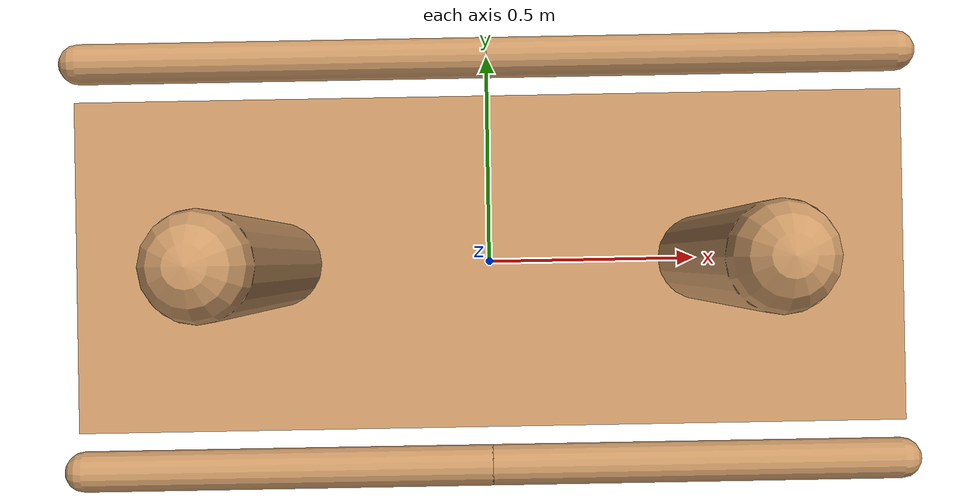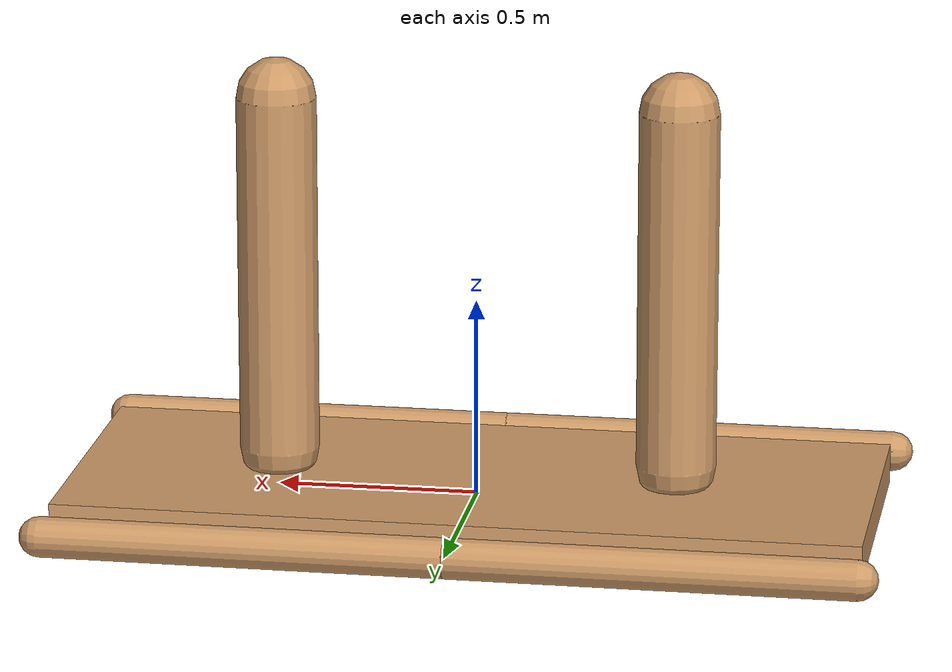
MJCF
<mujoco>
  <compiler angle="degree" coordinate="global" inertiafromgeom="true"/>
  <default>
    <joint armature="0.01" damping=".1" limited="true"/>
    <geom conaffinity="0" condim="3" contype="1" density="1000" friction="0.1 .1 .1" rgba="0.8 0.6 .4 1"/>
  </default>
  <option integrator="RK4" timestep="0.002"/>
  <worldbody>
    <body name="board_main">
      <!-- box shaoe-->
      <joint armature="0" axis="1 0 0" damping="0" limited="false" name="ignorex" pos="0 0 0" stiffness="0" type="slide"/>
      <joint armature="0" axis="0 0 1" damping="0" limited="false" name="ignorez" pos="0 0 0" ref="1.25" stiffness="0" type="slide"/>
      <joint armature="0" axis="0 1 0" damping="0" limited="false" name="ignorey" pos="0 0 0" stiffness="0" type="slide"/>
      <joint armature="0" axis="0 1 0" damping="0" limited="false" name="ignore_y" pos="0 0 0" stiffness="0" type="hinge"/>
      <joint armature="0" axis="0 0 1" damping="0" limited="false" name="ignore_z" pos="0 0 0" stiffness="0" type="hinge"/>
      <geom name="board_main_geom" pos="0 0 0" size="1.0 0.4 0.05" type="box" rgba="0.8 0.6 .4 1"/>

      <body name="front_left">
        <geom name="front_left_geom" fromto="0 0.5 0 1 0.5 0" size="0.05" type="capsule" rgba="0.8 0.6 .4 1"/>
      </body>
      <body name="front_right">
        <geom name="front_right_geom" fromto="0 -0.5 0 1 -0.5 0" size="0.05" type="capsule" rgba="0.8 0.6 .4 1"/>
      </body>
      <body name="back_left">
        <geom name="back_left_geom" fromto="0 0.5 0 -1 0.5 0" size="0.05" type="capsule" rgba="0.8 0.6 .4 1"/>
      </body>

      <body name="back_right">
        <geom name="back_right_geom" fromto="0 -0.5 0 -1 -0.5 0" size="0.05" type="capsule" rgba="0.8 0.6 .4 1"/>
      </body>
      <!-- add capsules on top-->
      <body name="front_capsule">
        <joint name="front_capsule" type="hinge" axis="1 0 0" range="-45 45"/>
        <geom name="front_geom_capsule" fromto="0.5 0 0.1 0.5 0 1" size="0.1" type="capsule" rgba="0.8 0.6 .4 1"/>
      </body>
      <body name="back_capsule">
        <joint name="back_capsule" type="hinge" pos="0 0 0" axis="1 0 0" range="-45 45"/>
        <geom name="back_geom_capsule" fromto="-0.5 0 0.1 -0.5 0 1" size="0.1" type="capsule" rgba="0.8 0.6 .4 1"/>
      </body>
    </body>
  </worldbody>
  <actuator>
    <motor joint="front_capsule" ctrlrange="-1.0 1.0" gear="500" ctrllimited="true"/>
    <motor joint="back_capsule" ctrlrange="-1.0 1.0" gear="500" ctrllimited="true"/>
  </actuator>
</mujoco>
